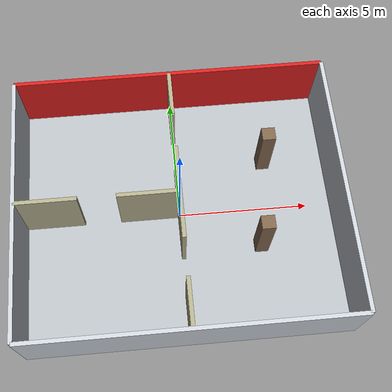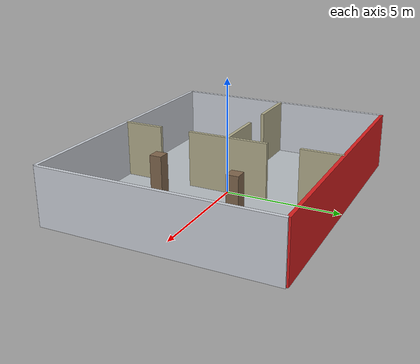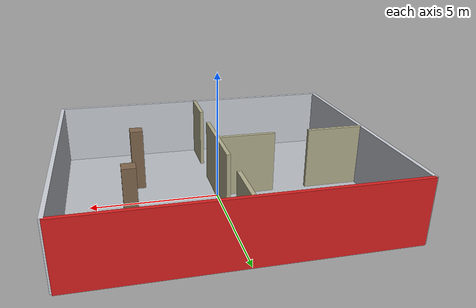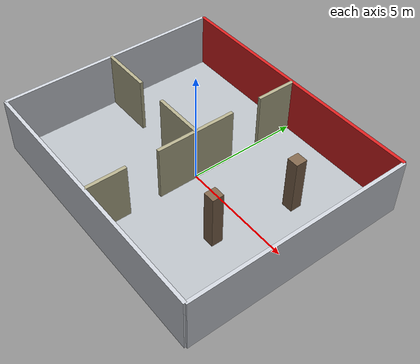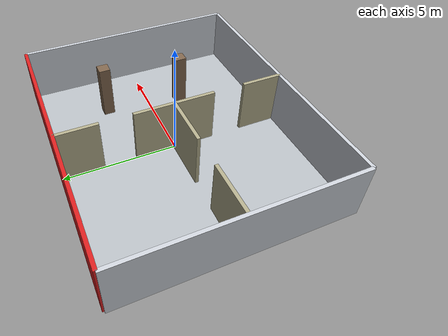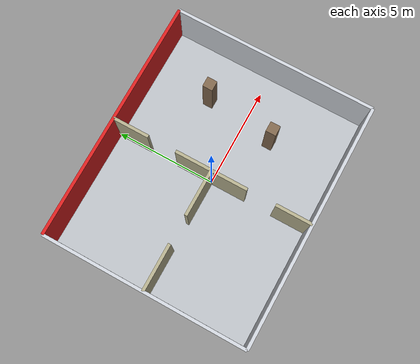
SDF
<sdf version="1.9">
 <world name="apartment">
  <physics name="1ms" type="ignored">
   <max_step_size>0.001</max_step_size>
   <real_time_factor>1.0</real_time_factor>
  </physics>
  <plugin filename="gz-sim-physics-system" name="gz::sim::systems::Physics"/>
  <plugin filename="gz-sim-scene-broadcaster-system" name="gz::sim::systems::SceneBroadcaster"/>
  <plugin filename="gz-sim-user-commands-system" name="gz::sim::systems::UserCommands"/>
  <plugin filename="gz-sim-sensors-system" name="gz::sim::systems::Sensors">
   <render_engine>ogre2</render_engine>
  </plugin>
  <plugin filename="gz-sim-imu-system" name="gz::sim::systems::Imu"/>
  <plugin filename="gz-sim-navsat-system" name="gz::sim::systems::NavSat"/>
  <spherical_coordinates>
   <latitude_deg>-35.363262</latitude_deg>
   <longitude_deg>149.165237</longitude_deg>
   <elevation>584.0</elevation>
   <heading_deg>0</heading_deg>
   <surface_model>EARTH_WGS84</surface_model>
  </spherical_coordinates>
  <light type="directional" name="main_light">
   <cast_shadows>false</cast_shadows>
   <pose>0 0 10 0 0 0</pose>
   <diffuse>1.0 1.0 1.0 1</diffuse>
   <specular>0.5 0.5 0.5 1</specular>
   <direction>0.1 0.1 -1</direction>
  </light>
  <model name="floor">
   <static>true</static>
   <link name="link">
    <collision name="c"><geometry><box><size>12.0 10.0 0.05</size></box></geometry></collision>
    <visual name="v">
     <geometry><box><size>12.0 10.0 0.05</size></box></geometry>
     <material>
      <ambient>0.72 0.74 0.76 1</ambient>
      <diffuse>0.72 0.74 0.76 1</diffuse>
      <specular>0.1 0.1 0.1 1</specular>
     </material>
    </visual>
   </link>
  </model>
  <model name="outer_south">
   <static>true</static>
   <pose>0.0000 -5.0000 1.250 0 0 0.00000</pose>
   <link name="link">
    <collision name="c"><geometry><box><size>12.0000 0.1500 2.500</size></box></geometry></collision>
    <visual name="v">
     <geometry><box><size>12.0000 0.1500 2.500</size></box></geometry>
     <material>
      <ambient>0.8 0.82 0.85 1</ambient>
      <diffuse>0.8 0.82 0.85 1</diffuse>
      <specular>0.1 0.1 0.1 1</specular>
     </material>
    </visual>
   </link>
  </model>
  <model name="outer_north">
   <static>true</static>
   <pose>0.0000 5.0000 1.250 0 0 0.00000</pose>
   <link name="link">
    <collision name="c"><geometry><box><size>12.0000 0.1500 2.500</size></box></geometry></collision>
    <visual name="v">
     <geometry><box><size>12.0000 0.1500 2.500</size></box></geometry>
     <material>
      <ambient>0.85 0.12 0.12 1</ambient>
      <diffuse>0.85 0.12 0.12 1</diffuse>
      <specular>0.1 0.1 0.1 1</specular>
     </material>
    </visual>
   </link>
  </model>
  <model name="outer_west">
   <static>true</static>
   <pose>-6.0000 0.0000 1.250 0 0 0.00000</pose>
   <link name="link">
    <collision name="c"><geometry><box><size>0.1500 10.0000 2.500</size></box></geometry></collision>
    <visual name="v">
     <geometry><box><size>0.1500 10.0000 2.500</size></box></geometry>
     <material>
      <ambient>0.8 0.82 0.85 1</ambient>
      <diffuse>0.8 0.82 0.85 1</diffuse>
      <specular>0.1 0.1 0.1 1</specular>
     </material>
    </visual>
   </link>
  </model>
  <model name="outer_east">
   <static>true</static>
   <pose>6.0000 0.0000 1.250 0 0 0.00000</pose>
   <link name="link">
    <collision name="c"><geometry><box><size>0.1500 10.0000 2.500</size></box></geometry></collision>
    <visual name="v">
     <geometry><box><size>0.1500 10.0000 2.500</size></box></geometry>
     <material>
      <ambient>0.8 0.82 0.85 1</ambient>
      <diffuse>0.8 0.82 0.85 1</diffuse>
      <specular>0.1 0.1 0.1 1</specular>
     </material>
    </visual>
   </link>
  </model>
  <model name="vdiv_0">
   <static>true</static>
   <pose>0.0000 -4.1000 1.250 0 0 0.00000</pose>
   <link name="link">
    <collision name="c"><geometry><box><size>0.1500 1.8000 2.500</size></box></geometry></collision>
    <visual name="v">
     <geometry><box><size>0.1500 1.8000 2.500</size></box></geometry>
     <material>
      <ambient>0.7 0.68 0.55 1</ambient>
      <diffuse>0.7 0.68 0.55 1</diffuse>
      <specular>0.1 0.1 0.1 1</specular>
     </material>
    </visual>
   </link>
  </model>
  <model name="vdiv_1">
   <static>true</static>
   <pose>0.0000 0.0000 1.250 0 0 0.00000</pose>
   <link name="link">
    <collision name="c"><geometry><box><size>0.1500 3.6000 2.500</size></box></geometry></collision>
    <visual name="v">
     <geometry><box><size>0.1500 3.6000 2.500</size></box></geometry>
     <material>
      <ambient>0.7 0.68 0.55 1</ambient>
      <diffuse>0.7 0.68 0.55 1</diffuse>
      <specular>0.1 0.1 0.1 1</specular>
     </material>
    </visual>
   </link>
  </model>
  <model name="vdiv_2">
   <static>true</static>
   <pose>0.0000 4.1000 1.250 0 0 0.00000</pose>
   <link name="link">
    <collision name="c"><geometry><box><size>0.1500 1.8000 2.500</size></box></geometry></collision>
    <visual name="v">
     <geometry><box><size>0.1500 1.8000 2.500</size></box></geometry>
     <material>
      <ambient>0.7 0.68 0.55 1</ambient>
      <diffuse>0.7 0.68 0.55 1</diffuse>
      <specular>0.1 0.1 0.1 1</specular>
     </material>
    </visual>
   </link>
  </model>
  <model name="hdiv_0">
   <static>true</static>
   <pose>-4.8500 0.0000 1.250 0 0 0.00000</pose>
   <link name="link">
    <collision name="c"><geometry><box><size>2.3000 0.1500 2.500</size></box></geometry></collision>
    <visual name="v">
     <geometry><box><size>2.3000 0.1500 2.500</size></box></geometry>
     <material>
      <ambient>0.7 0.68 0.55 1</ambient>
      <diffuse>0.7 0.68 0.55 1</diffuse>
      <specular>0.1 0.1 0.1 1</specular>
     </material>
    </visual>
   </link>
  </model>
  <model name="hdiv_1">
   <static>true</static>
   <pose>-1.1500 0.0000 1.250 0 0 0.00000</pose>
   <link name="link">
    <collision name="c"><geometry><box><size>2.3000 0.1500 2.500</size></box></geometry></collision>
    <visual name="v">
     <geometry><box><size>2.3000 0.1500 2.500</size></box></geometry>
     <material>
      <ambient>0.7 0.68 0.55 1</ambient>
      <diffuse>0.7 0.68 0.55 1</diffuse>
      <specular>0.1 0.1 0.1 1</specular>
     </material>
    </visual>
   </link>
  </model>
  <model name="col_b1">
   <static>true</static>
   <pose>3.0000 -1.5000 1.250 0 0 0.00000</pose>
   <link name="link">
    <collision name="c"><geometry><box><size>0.5000 0.5000 2.500</size></box></geometry></collision>
    <visual name="v">
     <geometry><box><size>0.5000 0.5000 2.500</size></box></geometry>
     <material>
      <ambient>0.5 0.4 0.3 1</ambient>
      <diffuse>0.5 0.4 0.3 1</diffuse>
      <specular>0.1 0.1 0.1 1</specular>
     </material>
    </visual>
   </link>
  </model>
  <model name="col_b2">
   <static>true</static>
   <pose>3.5000 2.0000 1.250 0 0 0.00000</pose>
   <link name="link">
    <collision name="c"><geometry><box><size>0.5000 0.5000 2.500</size></box></geometry></collision>
    <visual name="v">
     <geometry><box><size>0.5000 0.5000 2.500</size></box></geometry>
     <material>
      <ambient>0.5 0.4 0.3 1</ambient>
      <diffuse>0.5 0.4 0.3 1</diffuse>
      <specular>0.1 0.1 0.1 1</specular>
     </material>
    </visual>
   </link>
  </model>
 </world>
</sdf>
